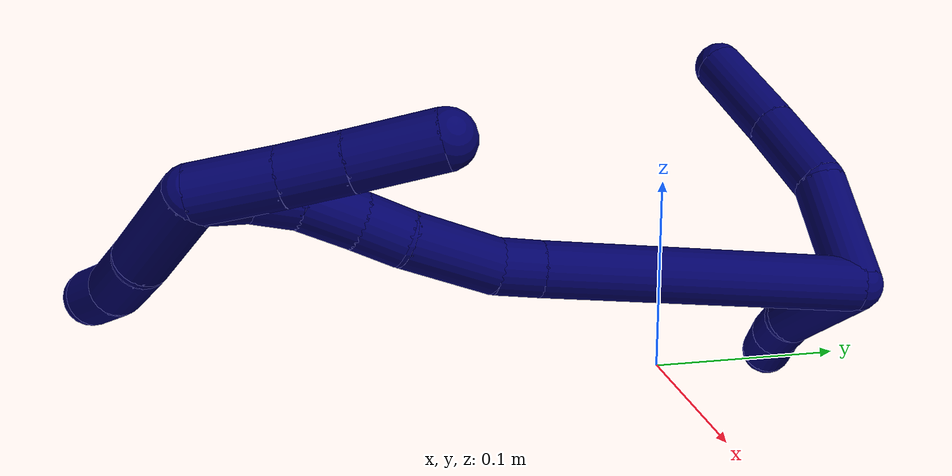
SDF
<sdf version="1.7">
 <world name="default">
  <model name="photoneo_s_sensor">
   <static>1</static>
   <pose>0 0 2 1.57079 1.57079 3.14159</pose>
   <link name="link">
    <inertial><mass>0.1</mass></inertial>
    <sensor name="sensor" type="depth">
     <update_rate>30</update_rate>
     <camera>
      <horizontal_fov>1.22</horizontal_fov>
      <image><width>1920</width><height>1200</height><format>B8G8R8</format></image>
      <clip><near>0.1</near><far>4</far></clip>
      <depth_camera><output>points</output></depth_camera>
     </camera>
     <plugin name="camera_plugin" filename="libgazebo_ros_depth_camera.so">
      <baseline>0.2</baseline>
      <alwaysOn>1</alwaysOn>
      <updateRate>0.0</updateRate>
      <cameraName>camera_ir</cameraName>
      <imageTopicName>/camera/color/image_raw</imageTopicName>
      <cameraInfoTopicName>/camera/color/camera_info</cameraInfoTopicName>
      <depthImageTopicName>/camera/depth/image_raw</depthImageTopicName>
      <depthImageCameraInfoTopicName>/camera/depth/camera_info</depthImageCameraInfoTopicName>
      <pointCloudTopicName>/camera/depth/points</pointCloudTopicName>
      <frameName>fr_optical</frameName>
      <pointCloudCutoff>0.1</pointCloudCutoff>
      <pointCloudCutoffMax>2.0</pointCloudCutoffMax>
      <distortionK1>0</distortionK1>
      <distortionK2>0</distortionK2>
      <distortionK3>0</distortionK3>
      <distortionT1>0</distortionT1>
      <distortionT2>0</distortionT2>
      <CxPrime>0</CxPrime>
      <Cx>0</Cx>
      <Cy>0</Cy>
      <focalLength>0</focalLength>
      <hackBaseline>0</hackBaseline>
     </plugin>
    </sensor>
   </link>
  </model>
  <model name="bin">
   <static>1</static>
   <link name="bottom">
    <collision name="collision-bottom">
     <pose>0 0 -0.01 0 -0 0</pose>
     <geometry><box><size>0.8 0.6 0.02</size></box></geometry>
     <surface>
      <friction><ode><mu>100</mu><mu2>100</mu2></ode></friction>
      <contact><collide_bitmask>65535</collide_bitmask></contact>
     </surface>
    </collision>
   </link>
   <link name="west_wall">
    <collision name="collision-west_wall">
     <pose>-0.41 0 0.1 0 -0 0</pose>
     <geometry><box><size>0.02 0.6 0.2</size></box></geometry>
     <surface>
      <friction><ode><mu>100</mu><mu2>100</mu2></ode></friction>
      <contact><collide_bitmask>65535</collide_bitmask></contact>
     </surface>
    </collision>
   </link>
   <link name="east_wall">
    <collision name="collision-east_wall">
     <pose>0.41 0 0.1 0 -0 0</pose>
     <geometry><box><size>0.02 0.6 0.2</size></box></geometry>
     <surface>
      <friction><ode><mu>100</mu><mu2>100</mu2></ode></friction>
      <contact><collide_bitmask>65535</collide_bitmask></contact>
     </surface>
    </collision>
   </link>
   <link name="south_wall">
    <collision name="collision-south_wall">
     <pose>0 -0.31 0.1 0 -0 0</pose>
     <geometry><box><size>0.8 0.02 0.2</size></box></geometry>
     <surface>
      <friction><ode><mu>100</mu><mu2>100</mu2></ode></friction>
      <contact><collide_bitmask>65535</collide_bitmask></contact>
     </surface>
    </collision>
   </link>
   <link name="north_wall">
    <collision name="collision-north_wall">
     <pose>0 0.31 0.1 0 -0 0</pose>
     <geometry><box><size>0.8 0.02 0.2</size></box></geometry>
     <surface>
      <friction><ode><mu>100</mu><mu2>100</mu2></ode></friction>
      <contact><collide_bitmask>65535</collide_bitmask></contact>
     </surface>
    </collision>
   </link>
  </model>
  <model name="7">
   <static>0</static>
   <link name="7">
    <collision name="collision-cylinder-e_1_2_8">
     <pose>0.025096 0.008584 0.003865 -1.14771 1.21193 -0.842256</pose>
     <geometry><cylinder><radius>0.0125</radius><length>0.053607</length></cylinder></geometry>
     <surface>
      <friction><ode><mu>1.16</mu><mu2>1.16</mu2><slip1>0</slip1><slip2>0</slip2></ode></friction>
      <contact><ode><kp>1e+06</kp><kd>1</kd><max_vel>0</max_vel><min_depth>0.001</min_depth></ode></contact>
     </surface>
    </collision>
    <visual name="visual-cylinder-e_1_2_8">
     <pose>0.025096 0.008584 0.003865 -1.14771 1.21193 -0.842256</pose>
     <geometry><cylinder><radius>0.0125</radius><length>0.053607</length></cylinder></geometry>
     <material><ambient>0.003922 0 0.403922 1</ambient></material>
    </visual>
    <collision name="collision-cylinder-e_2_8_9">
     <pose>0.068983 0.021711 0.017839 -0.42237 1.03792 -0.243689</pose>
     <geometry><cylinder><radius>0.0125</radius><length>0.043631</length></cylinder></geometry>
     <surface>
      <friction><ode><mu>1.16</mu><mu2>1.16</mu2><slip1>0</slip1><slip2>0</slip2></ode></friction>
      <contact><ode><kp>1e+06</kp><kd>1</kd><max_vel>0</max_vel><min_depth>0.001</min_depth></ode></contact>
     </surface>
    </collision>
    <visual name="visual-cylinder-e_2_8_9">
     <pose>0.068983 0.021711 0.017839 -0.42237 1.03792 -0.243689</pose>
     <geometry><cylinder><radius>0.0125</radius><length>0.043631</length></cylinder></geometry>
     <material><ambient>0.003922 0 0.403922 1</ambient></material>
    </visual>
    <collision name="collision-cylinder-e_3_9_6">
     <pose>0.11053 0.030938 0.040444 -0.358614 1.04037 -0.206906</pose>
     <geometry><cylinder><radius>0.0125</radius><length>0.052761</length></cylinder></geometry>
     <surface>
      <friction><ode><mu>1.16</mu><mu2>1.16</mu2><slip1>0</slip1><slip2>0</slip2></ode></friction>
      <contact><ode><kp>1e+06</kp><kd>1</kd><max_vel>0</max_vel><min_depth>0.001</min_depth></ode></contact>
     </surface>
    </collision>
    <visual name="visual-cylinder-e_3_9_6">
     <pose>0.11053 0.030938 0.040444 -0.358614 1.04037 -0.206906</pose>
     <geometry><cylinder><radius>0.0125</radius><length>0.052761</length></cylinder></geometry>
     <material><ambient>0.003922 0 0.403922 1</ambient></material>
    </visual>
    <collision name="collision-cylinder-e_1_2_10">
     <pose>-2e-05 0.000103 0.026641 -0.00388 -0.000734 1e-06</pose>
     <geometry><cylinder><radius>0.0125</radius><length>0.053282</length></cylinder></geometry>
     <surface>
      <friction><ode><mu>1.16</mu><mu2>1.16</mu2><slip1>0</slip1><slip2>0</slip2></ode></friction>
      <contact><ode><kp>1e+06</kp><kd>1</kd><max_vel>0</max_vel><min_depth>0.001</min_depth></ode></contact>
     </surface>
    </collision>
    <visual name="visual-cylinder-e_1_2_10">
     <pose>-2e-05 0.000103 0.026641 -0.00388 -0.000734 1e-06</pose>
     <geometry><cylinder><radius>0.0125</radius><length>0.053282</length></cylinder></geometry>
     <material><ambient>0.003922 0 0.403922 1</ambient></material>
    </visual>
    <collision name="collision-cylinder-e_2_10_11">
     <pose>-0.001531 0.003356 0.064306 -0.278287 -0.129371 0.018143</pose>
     <geometry><cylinder><radius>0.0125</radius><length>0.023123</length></cylinder></geometry>
     <surface>
      <friction><ode><mu>1.16</mu><mu2>1.16</mu2><slip1>0</slip1><slip2>0</slip2></ode></friction>
      <contact><ode><kp>1e+06</kp><kd>1</kd><max_vel>0</max_vel><min_depth>0.001</min_depth></ode></contact>
     </surface>
    </collision>
    <visual name="visual-cylinder-e_2_10_11">
     <pose>-0.001531 0.003356 0.064306 -0.278287 -0.129371 0.018143</pose>
     <geometry><cylinder><radius>0.0125</radius><length>0.023123</length></cylinder></geometry>
     <material><ambient>0.003922 0 0.403922 1</ambient></material>
    </visual>
    <collision name="collision-cylinder-e_3_11_5">
     <pose>-0.005777 0.009484 0.086407 -0.262664 -0.235658 0.031271</pose>
     <geometry><cylinder><radius>0.0125</radius><length>0.023595</length></cylinder></geometry>
     <surface>
      <friction><ode><mu>1.16</mu><mu2>1.16</mu2><slip1>0</slip1><slip2>0</slip2></ode></friction>
      <contact><ode><kp>1e+06</kp><kd>1</kd><max_vel>0</max_vel><min_depth>0.001</min_depth></ode></contact>
     </surface>
    </collision>
    <visual name="visual-cylinder-e_3_11_5">
     <pose>-0.005777 0.009484 0.086407 -0.262664 -0.235658 0.031271</pose>
     <geometry><cylinder><radius>0.0125</radius><length>0.023595</length></cylinder></geometry>
     <material><ambient>0.003922 0 0.403922 1</ambient></material>
    </visual>
    <collision name="collision-cylinder-e_1_2_12">
     <pose>0.031589 -0.065215 0.012461 1.382 0.444075 0.369163</pose>
     <geometry><cylinder><radius>0.0125</radius><length>0.147053</length></cylinder></geometry>
     <surface>
      <friction><ode><mu>1.16</mu><mu2>1.16</mu2><slip1>0</slip1><slip2>0</slip2></ode></friction>
      <contact><ode><kp>1e+06</kp><kd>1</kd><max_vel>0</max_vel><min_depth>0.001</min_depth></ode></contact>
     </surface>
    </collision>
    <visual name="visual-cylinder-e_1_2_12">
     <pose>0.031589 -0.065215 0.012461 1.382 0.444075 0.369163</pose>
     <geometry><cylinder><radius>0.0125</radius><length>0.147053</length></cylinder></geometry>
     <material><ambient>0.003922 0 0.403922 1</ambient></material>
    </visual>
    <collision name="collision-cylinder-e_2_12_13">
     <pose>0.067447 -0.139582 0.025754 1.48013 0.434986 0.398269</pose>
     <geometry><cylinder><radius>0.0125</radius><length>0.020265</length></cylinder></geometry>
     <surface>
      <friction><ode><mu>1.16</mu><mu2>1.16</mu2><slip1>0</slip1><slip2>0</slip2></ode></friction>
      <contact><ode><kp>1e+06</kp><kd>1</kd><max_vel>0</max_vel><min_depth>0.001</min_depth></ode></contact>
     </surface>
    </collision>
    <visual name="visual-cylinder-e_2_12_13">
     <pose>0.067447 -0.139582 0.025754 1.48013 0.434986 0.398269</pose>
     <geometry><cylinder><radius>0.0125</radius><length>0.020265</length></cylinder></geometry>
     <material><ambient>0.003922 0 0.403922 1</ambient></material>
    </visual>
    <collision name="collision-cylinder-e_3_13_14">
     <pose>0.083013 -0.166761 0.022858 1.77473 0.550344 0.667459</pose>
     <geometry><cylinder><radius>0.0125</radius><length>0.043197</length></cylinder></geometry>
     <surface>
      <friction><ode><mu>1.16</mu><mu2>1.16</mu2><slip1>0</slip1><slip2>0</slip2></ode></friction>
      <contact><ode><kp>1e+06</kp><kd>1</kd><max_vel>0</max_vel><min_depth>0.001</min_depth></ode></contact>
     </surface>
    </collision>
    <visual name="visual-cylinder-e_3_13_14">
     <pose>0.083013 -0.166761 0.022858 1.77473 0.550344 0.667459</pose>
     <geometry><cylinder><radius>0.0125</radius><length>0.043197</length></cylinder></geometry>
     <material><ambient>0.003922 0 0.403922 1</ambient></material>
    </visual>
    <collision name="collision-cylinder-e_4_14_15">
     <pose>0.100919 -0.192742 0.018424 1.65931 0.691583 0.750047</pose>
     <geometry><cylinder><radius>0.0125</radius><length>0.020732</length></cylinder></geometry>
     <surface>
      <friction><ode><mu>1.16</mu><mu2>1.16</mu2><slip1>0</slip1><slip2>0</slip2></ode></friction>
      <contact><ode><kp>1e+06</kp><kd>1</kd><max_vel>0</max_vel><min_depth>0.001</min_depth></ode></contact>
     </surface>
    </collision>
    <visual name="visual-cylinder-e_4_14_15">
     <pose>0.100919 -0.192742 0.018424 1.65931 0.691583 0.750047</pose>
     <geometry><cylinder><radius>0.0125</radius><length>0.020732</length></cylinder></geometry>
     <material><ambient>0.003922 0 0.403922 1</ambient></material>
    </visual>
    <collision name="collision-cylinder-e_5_15_16">
     <pose>0.114794 -0.210748 0.015774 1.76184 0.617024 0.737156</pose>
     <geometry><cylinder><radius>0.0125</radius><length>0.025108</length></cylinder></geometry>
     <surface>
      <friction><ode><mu>1.16</mu><mu2>1.16</mu2><slip1>0</slip1><slip2>0</slip2></ode></friction>
      <contact><ode><kp>1e+06</kp><kd>1</kd><max_vel>0</max_vel><min_depth>0.001</min_depth></ode></contact>
     </surface>
    </collision>
    <visual name="visual-cylinder-e_5_15_16">
     <pose>0.114794 -0.210748 0.015774 1.76184 0.617024 0.737156</pose>
     <geometry><cylinder><radius>0.0125</radius><length>0.025108</length></cylinder></geometry>
     <material><ambient>0.003922 0 0.403922 1</ambient></material>
    </visual>
    <collision name="collision-cylinder-e_6_16_17">
     <pose>0.126847 -0.22986 0.014077 1.54353 0.486084 0.473498</pose>
     <geometry><cylinder><radius>0.0125</radius><length>0.0205</length></cylinder></geometry>
     <surface>
      <friction><ode><mu>1.16</mu><mu2>1.16</mu2><slip1>0</slip1><slip2>0</slip2></ode></friction>
      <contact><ode><kp>1e+06</kp><kd>1</kd><max_vel>0</max_vel><min_depth>0.001</min_depth></ode></contact>
     </surface>
    </collision>
    <visual name="visual-cylinder-e_6_16_17">
     <pose>0.126847 -0.22986 0.014077 1.54353 0.486084 0.473498</pose>
     <geometry><cylinder><radius>0.0125</radius><length>0.0205</length></cylinder></geometry>
     <material><ambient>0.003922 0 0.403922 1</ambient></material>
    </visual>
    <collision name="collision-cylinder-e_7_17_1">
     <pose>0.134021 -0.25013 0.012731 1.71192 0.207672 0.23898</pose>
     <geometry><cylinder><radius>0.0125</radius><length>0.023145</length></cylinder></geometry>
     <surface>
      <friction><ode><mu>1.16</mu><mu2>1.16</mu2><slip1>0</slip1><slip2>0</slip2></ode></friction>
      <contact><ode><kp>1e+06</kp><kd>1</kd><max_vel>0</max_vel><min_depth>0.001</min_depth></ode></contact>
     </surface>
    </collision>
    <visual name="visual-cylinder-e_7_17_1">
     <pose>0.134021 -0.25013 0.012731 1.71192 0.207672 0.23898</pose>
     <geometry><cylinder><radius>0.0125</radius><length>0.023145</length></cylinder></geometry>
     <material><ambient>0.003922 0 0.403922 1</ambient></material>
    </visual>
    <collision name="collision-cylinder-e_1_1_18">
     <pose>0.133608 -0.26987 0.032913 0.373312 -0.11913 -0.022524</pose>
     <geometry><cylinder><radius>0.0125</radius><length>0.047105</length></cylinder></geometry>
     <surface>
      <friction><ode><mu>1.16</mu><mu2>1.16</mu2><slip1>0</slip1><slip2>0</slip2></ode></friction>
      <contact><ode><kp>1e+06</kp><kd>1</kd><max_vel>0</max_vel><min_depth>0.001</min_depth></ode></contact>
     </surface>
    </collision>
    <visual name="visual-cylinder-e_1_1_18">
     <pose>0.133608 -0.26987 0.032913 0.373312 -0.11913 -0.022524</pose>
     <geometry><cylinder><radius>0.0125</radius><length>0.047105</length></cylinder></geometry>
     <material><ambient>0.003922 0 0.403922 1</ambient></material>
    </visual>
    <collision name="collision-cylinder-e_2_18_19">
     <pose>0.131411 -0.28161 0.070801 0.196683 0.036661 0.003617</pose>
     <geometry><cylinder><radius>0.0125</radius><length>0.032882</length></cylinder></geometry>
     <surface>
      <friction><ode><mu>1.16</mu><mu2>1.16</mu2><slip1>0</slip1><slip2>0</slip2></ode></friction>
      <contact><ode><kp>1e+06</kp><kd>1</kd><max_vel>0</max_vel><min_depth>0.001</min_depth></ode></contact>
     </surface>
    </collision>
    <visual name="visual-cylinder-e_2_18_19">
     <pose>0.131411 -0.28161 0.070801 0.196683 0.036661 0.003617</pose>
     <geometry><cylinder><radius>0.0125</radius><length>0.032882</length></cylinder></geometry>
     <material><ambient>0.003922 0 0.403922 1</ambient></material>
    </visual>
    <collision name="collision-cylinder-e_3_19_4">
     <pose>0.134216 -0.288409 0.095992 0.376466 0.221867 0.042431</pose>
     <geometry><cylinder><radius>0.0125</radius><length>0.020013</length></cylinder></geometry>
     <surface>
      <friction><ode><mu>1.16</mu><mu2>1.16</mu2><slip1>0</slip1><slip2>0</slip2></ode></friction>
      <contact><ode><kp>1e+06</kp><kd>1</kd><max_vel>0</max_vel><min_depth>0.001</min_depth></ode></contact>
     </surface>
    </collision>
    <visual name="visual-cylinder-e_3_19_4">
     <pose>0.134216 -0.288409 0.095992 0.376466 0.221867 0.042431</pose>
     <geometry><cylinder><radius>0.0125</radius><length>0.020013</length></cylinder></geometry>
     <material><ambient>0.003922 0 0.403922 1</ambient></material>
    </visual>
    <collision name="collision-cylinder-e_1_1_20">
     <pose>0.131613 -0.246463 0.002243 -2.10962 -0.269825 0.469752</pose>
     <geometry><cylinder><radius>0.0125</radius><length>0.03597</length></cylinder></geometry>
     <surface>
      <friction><ode><mu>1.16</mu><mu2>1.16</mu2><slip1>0</slip1><slip2>0</slip2></ode></friction>
      <contact><ode><kp>1e+06</kp><kd>1</kd><max_vel>0</max_vel><min_depth>0.001</min_depth></ode></contact>
     </surface>
    </collision>
    <visual name="visual-cylinder-e_1_1_20">
     <pose>0.131613 -0.246463 0.002243 -2.10962 -0.269825 0.469752</pose>
     <geometry><cylinder><radius>0.0125</radius><length>0.03597</length></cylinder></geometry>
     <material><ambient>0.003922 0 0.403922 1</ambient></material>
    </visual>
    <collision name="collision-cylinder-e_2_20_21">
     <pose>0.123484 -0.220621 -0.01353 -2.13115 -0.252131 0.4505</pose>
     <geometry><cylinder><radius>0.0125</radius><length>0.02673</length></cylinder></geometry>
     <surface>
      <friction><ode><mu>1.16</mu><mu2>1.16</mu2><slip1>0</slip1><slip2>0</slip2></ode></friction>
      <contact><ode><kp>1e+06</kp><kd>1</kd><max_vel>0</max_vel><min_depth>0.001</min_depth></ode></contact>
     </surface>
    </collision>
    <visual name="visual-cylinder-e_2_20_21">
     <pose>0.123484 -0.220621 -0.01353 -2.13115 -0.252131 0.4505</pose>
     <geometry><cylinder><radius>0.0125</radius><length>0.02673</length></cylinder></geometry>
     <material><ambient>0.003922 0 0.403922 1</ambient></material>
    </visual>
    <collision name="collision-cylinder-e_3_21_3">
     <pose>0.115709 -0.194323 -0.030048 -2.13193 -0.240474 0.430508</pose>
     <geometry><cylinder><radius>0.0125</radius><length>0.037299</length></cylinder></geometry>
     <surface>
      <friction><ode><mu>1.16</mu><mu2>1.16</mu2><slip1>0</slip1><slip2>0</slip2></ode></friction>
      <contact><ode><kp>1e+06</kp><kd>1</kd><max_vel>0</max_vel><min_depth>0.001</min_depth></ode></contact>
     </surface>
    </collision>
    <visual name="visual-cylinder-e_3_21_3">
     <pose>0.115709 -0.194323 -0.030048 -2.13193 -0.240474 0.430508</pose>
     <geometry><cylinder><radius>0.0125</radius><length>0.037299</length></cylinder></geometry>
     <material><ambient>0.003922 0 0.403922 1</ambient></material>
    </visual>
    <collision name="collision-sphere-3">
     <pose>0.111267 -0.178987 -0.039686 0 -0 0</pose>
     <geometry><sphere><radius>0.0125</radius></sphere></geometry>
     <surface>
      <friction><ode><mu>1.16</mu><mu2>1.16</mu2><slip1>0</slip1><slip2>0</slip2></ode></friction>
      <contact><ode><kp>1e+06</kp><kd>1</kd><max_vel>0</max_vel><min_depth>0.001</min_depth></ode></contact>
     </surface>
    </collision>
    <visual name="visual-sphere-3">
     <pose>0.111267 -0.178987 -0.039686 0 -0 0</pose>
     <geometry><sphere><radius>0.0125</radius></sphere></geometry>
     <material><ambient>0.003922 0 0.403922 1</ambient></material>
    </visual>
    <collision name="collision-sphere-21">
     <pose>0.12015 -0.209658 -0.020409 0 -0 0</pose>
     <geometry><sphere><radius>0.0125</radius></sphere></geometry>
     <surface>
      <friction><ode><mu>1.16</mu><mu2>1.16</mu2><slip1>0</slip1><slip2>0</slip2></ode></friction>
      <contact><ode><kp>1e+06</kp><kd>1</kd><max_vel>0</max_vel><min_depth>0.001</min_depth></ode></contact>
     </surface>
    </collision>
    <visual name="visual-sphere-21">
     <pose>0.12015 -0.209658 -0.020409 0 -0 0</pose>
     <geometry><sphere><radius>0.0125</radius></sphere></geometry>
     <material><ambient>0.003922 0 0.403922 1</ambient></material>
    </visual>
    <collision name="collision-sphere-20">
     <pose>0.126819 -0.231585 -0.006651 0 -0 0</pose>
     <geometry><sphere><radius>0.0125</radius></sphere></geometry>
     <surface>
      <friction><ode><mu>1.16</mu><mu2>1.16</mu2><slip1>0</slip1><slip2>0</slip2></ode></friction>
      <contact><ode><kp>1e+06</kp><kd>1</kd><max_vel>0</max_vel><min_depth>0.001</min_depth></ode></contact>
     </surface>
    </collision>
    <visual name="visual-sphere-20">
     <pose>0.126819 -0.231585 -0.006651 0 -0 0</pose>
     <geometry><sphere><radius>0.0125</radius></sphere></geometry>
     <material><ambient>0.003922 0 0.403922 1</ambient></material>
    </visual>
    <collision name="collision-sphere-4">
     <pose>0.136418 -0.291998 0.10507 0 -0 0</pose>
     <geometry><sphere><radius>0.0125</radius></sphere></geometry>
     <surface>
      <friction><ode><mu>1.16</mu><mu2>1.16</mu2><slip1>0</slip1><slip2>0</slip2></ode></friction>
      <contact><ode><kp>1e+06</kp><kd>1</kd><max_vel>0</max_vel><min_depth>0.001</min_depth></ode></contact>
     </surface>
    </collision>
    <visual name="visual-sphere-4">
     <pose>0.136418 -0.291998 0.10507 0 -0 0</pose>
     <geometry><sphere><radius>0.0125</radius></sphere></geometry>
     <material><ambient>0.003922 0 0.403922 1</ambient></material>
    </visual>
    <collision name="collision-sphere-11">
     <pose>-0.003022 0.006506 0.075329 0 -0 0</pose>
     <geometry><sphere><radius>0.0125</radius></sphere></geometry>
     <surface>
      <friction><ode><mu>1.16</mu><mu2>1.16</mu2><slip1>0</slip1><slip2>0</slip2></ode></friction>
      <contact><ode><kp>1e+06</kp><kd>1</kd><max_vel>0</max_vel><min_depth>0.001</min_depth></ode></contact>
     </surface>
    </collision>
    <visual name="visual-sphere-11">
     <pose>-0.003022 0.006506 0.075329 0 -0 0</pose>
     <geometry><sphere><radius>0.0125</radius></sphere></geometry>
     <material><ambient>0.003922 0 0.403922 1</ambient></material>
    </visual>
    <collision name="collision-sphere-10">
     <pose>-3.9e-05 0.000207 0.053282 0 -0 0</pose>
     <geometry><sphere><radius>0.0125</radius></sphere></geometry>
     <surface>
      <friction><ode><mu>1.16</mu><mu2>1.16</mu2><slip1>0</slip1><slip2>0</slip2></ode></friction>
      <contact><ode><kp>1e+06</kp><kd>1</kd><max_vel>0</max_vel><min_depth>0.001</min_depth></ode></contact>
     </surface>
    </collision>
    <visual name="visual-sphere-10">
     <pose>-3.9e-05 0.000207 0.053282 0 -0 0</pose>
     <geometry><sphere><radius>0.0125</radius></sphere></geometry>
     <material><ambient>0.003922 0 0.403922 1</ambient></material>
    </visual>
    <collision name="collision-sphere-6">
     <pose>0.133286 0.035622 0.052941 0 -0 0</pose>
     <geometry><sphere><radius>0.0125</radius></sphere></geometry>
     <surface>
      <friction><ode><mu>1.16</mu><mu2>1.16</mu2><slip1>0</slip1><slip2>0</slip2></ode></friction>
      <contact><ode><kp>1e+06</kp><kd>1</kd><max_vel>0</max_vel><min_depth>0.001</min_depth></ode></contact>
     </surface>
    </collision>
    <visual name="visual-sphere-6">
     <pose>0.133286 0.035622 0.052941 0 -0 0</pose>
     <geometry><sphere><radius>0.0125</radius></sphere></geometry>
     <material><ambient>0.003922 0 0.403922 1</ambient></material>
    </visual>
    <collision name="collision-sphere-9">
     <pose>0.087774 0.026254 0.027947 0 -0 0</pose>
     <geometry><sphere><radius>0.0125</radius></sphere></geometry>
     <surface>
      <friction><ode><mu>1.16</mu><mu2>1.16</mu2><slip1>0</slip1><slip2>0</slip2></ode></friction>
      <contact><ode><kp>1e+06</kp><kd>1</kd><max_vel>0</max_vel><min_depth>0.001</min_depth></ode></contact>
     </surface>
    </collision>
    <visual name="visual-sphere-9">
     <pose>0.087774 0.026254 0.027947 0 -0 0</pose>
     <geometry><sphere><radius>0.0125</radius></sphere></geometry>
     <material><ambient>0.003922 0 0.403922 1</ambient></material>
    </visual>
    <collision name="collision-sphere-2">
     <geometry><sphere><radius>0.0125</radius></sphere></geometry>
     <surface>
      <friction><ode><mu>1.16</mu><mu2>1.16</mu2><slip1>0</slip1><slip2>0</slip2></ode></friction>
      <contact><ode><kp>1e+06</kp><kd>1</kd><max_vel>0</max_vel><min_depth>0.001</min_depth></ode></contact>
     </surface>
    </collision>
    <visual name="visual-sphere-2">
     <geometry><sphere><radius>0.0125</radius></sphere></geometry>
     <material><ambient>0.003922 0 0.403922 1</ambient></material>
    </visual>
    <collision name="collision-sphere-19">
     <pose>0.132014 -0.28482 0.086914 0 -0 0</pose>
     <geometry><sphere><radius>0.0125</radius></sphere></geometry>
     <surface>
      <friction><ode><mu>1.16</mu><mu2>1.16</mu2><slip1>0</slip1><slip2>0</slip2></ode></friction>
      <contact><ode><kp>1e+06</kp><kd>1</kd><max_vel>0</max_vel><min_depth>0.001</min_depth></ode></contact>
     </surface>
    </collision>
    <visual name="visual-sphere-19">
     <pose>0.132014 -0.28482 0.086914 0 -0 0</pose>
     <geometry><sphere><radius>0.0125</radius></sphere></geometry>
     <material><ambient>0.003922 0 0.403922 1</ambient></material>
    </visual>
    <collision name="collision-sphere-8">
     <pose>0.050192 0.017167 0.00773 0 -0 0</pose>
     <geometry><sphere><radius>0.0125</radius></sphere></geometry>
     <surface>
      <friction><ode><mu>1.16</mu><mu2>1.16</mu2><slip1>0</slip1><slip2>0</slip2></ode></friction>
      <contact><ode><kp>1e+06</kp><kd>1</kd><max_vel>0</max_vel><min_depth>0.001</min_depth></ode></contact>
     </surface>
    </collision>
    <visual name="visual-sphere-8">
     <pose>0.050192 0.017167 0.00773 0 -0 0</pose>
     <geometry><sphere><radius>0.0125</radius></sphere></geometry>
     <material><ambient>0.003922 0 0.403922 1</ambient></material>
    </visual>
    <collision name="collision-sphere-5">
     <pose>-0.008531 0.012463 0.097485 0 -0 0</pose>
     <geometry><sphere><radius>0.0125</radius></sphere></geometry>
     <surface>
      <friction><ode><mu>1.16</mu><mu2>1.16</mu2><slip1>0</slip1><slip2>0</slip2></ode></friction>
      <contact><ode><kp>1e+06</kp><kd>1</kd><max_vel>0</max_vel><min_depth>0.001</min_depth></ode></contact>
     </surface>
    </collision>
    <visual name="visual-sphere-5">
     <pose>-0.008531 0.012463 0.097485 0 -0 0</pose>
     <geometry><sphere><radius>0.0125</radius></sphere></geometry>
     <material><ambient>0.003922 0 0.403922 1</ambient></material>
    </visual>
    <collision name="collision-sphere-12">
     <pose>0.063177 -0.130431 0.024922 0 -0 0</pose>
     <geometry><sphere><radius>0.0125</radius></sphere></geometry>
     <surface>
      <friction><ode><mu>1.16</mu><mu2>1.16</mu2><slip1>0</slip1><slip2>0</slip2></ode></friction>
      <contact><ode><kp>1e+06</kp><kd>1</kd><max_vel>0</max_vel><min_depth>0.001</min_depth></ode></contact>
     </surface>
    </collision>
    <visual name="visual-sphere-12">
     <pose>0.063177 -0.130431 0.024922 0 -0 0</pose>
     <geometry><sphere><radius>0.0125</radius></sphere></geometry>
     <material><ambient>0.003922 0 0.403922 1</ambient></material>
    </visual>
    <collision name="collision-sphere-13">
     <pose>0.071717 -0.148733 0.026586 0 -0 0</pose>
     <geometry><sphere><radius>0.0125</radius></sphere></geometry>
     <surface>
      <friction><ode><mu>1.16</mu><mu2>1.16</mu2><slip1>0</slip1><slip2>0</slip2></ode></friction>
      <contact><ode><kp>1e+06</kp><kd>1</kd><max_vel>0</max_vel><min_depth>0.001</min_depth></ode></contact>
     </surface>
    </collision>
    <visual name="visual-sphere-13">
     <pose>0.071717 -0.148733 0.026586 0 -0 0</pose>
     <geometry><sphere><radius>0.0125</radius></sphere></geometry>
     <material><ambient>0.003922 0 0.403922 1</ambient></material>
    </visual>
    <collision name="collision-sphere-14">
     <pose>0.094308 -0.184789 0.01913 0 -0 0</pose>
     <geometry><sphere><radius>0.0125</radius></sphere></geometry>
     <surface>
      <friction><ode><mu>1.16</mu><mu2>1.16</mu2><slip1>0</slip1><slip2>0</slip2></ode></friction>
      <contact><ode><kp>1e+06</kp><kd>1</kd><max_vel>0</max_vel><min_depth>0.001</min_depth></ode></contact>
     </surface>
    </collision>
    <visual name="visual-sphere-14">
     <pose>0.094308 -0.184789 0.01913 0 -0 0</pose>
     <geometry><sphere><radius>0.0125</radius></sphere></geometry>
     <material><ambient>0.003922 0 0.403922 1</ambient></material>
    </visual>
    <collision name="collision-sphere-15">
     <pose>0.10753 -0.200695 0.017718 0 -0 0</pose>
     <geometry><sphere><radius>0.0125</radius></sphere></geometry>
     <surface>
      <friction><ode><mu>1.16</mu><mu2>1.16</mu2><slip1>0</slip1><slip2>0</slip2></ode></friction>
      <contact><ode><kp>1e+06</kp><kd>1</kd><max_vel>0</max_vel><min_depth>0.001</min_depth></ode></contact>
     </surface>
    </collision>
    <visual name="visual-sphere-15">
     <pose>0.10753 -0.200695 0.017718 0 -0 0</pose>
     <geometry><sphere><radius>0.0125</radius></sphere></geometry>
     <material><ambient>0.003922 0 0.403922 1</ambient></material>
    </visual>
    <collision name="collision-sphere-16">
     <pose>0.122058 -0.220801 0.01383 0 -0 0</pose>
     <geometry><sphere><radius>0.0125</radius></sphere></geometry>
     <surface>
      <friction><ode><mu>1.16</mu><mu2>1.16</mu2><slip1>0</slip1><slip2>0</slip2></ode></friction>
      <contact><ode><kp>1e+06</kp><kd>1</kd><max_vel>0</max_vel><min_depth>0.001</min_depth></ode></contact>
     </surface>
    </collision>
    <visual name="visual-sphere-16">
     <pose>0.122058 -0.220801 0.01383 0 -0 0</pose>
     <geometry><sphere><radius>0.0125</radius></sphere></geometry>
     <material><ambient>0.003922 0 0.403922 1</ambient></material>
    </visual>
    <collision name="collision-sphere-17">
     <pose>0.131635 -0.238919 0.014324 0 -0 0</pose>
     <geometry><sphere><radius>0.0125</radius></sphere></geometry>
     <surface>
      <friction><ode><mu>1.16</mu><mu2>1.16</mu2><slip1>0</slip1><slip2>0</slip2></ode></friction>
      <contact><ode><kp>1e+06</kp><kd>1</kd><max_vel>0</max_vel><min_depth>0.001</min_depth></ode></contact>
     </surface>
    </collision>
    <visual name="visual-sphere-17">
     <pose>0.131635 -0.238919 0.014324 0 -0 0</pose>
     <geometry><sphere><radius>0.0125</radius></sphere></geometry>
     <material><ambient>0.003922 0 0.403922 1</ambient></material>
    </visual>
    <collision name="collision-sphere-1">
     <pose>0.136407 -0.261341 0.011138 0 -0 0</pose>
     <geometry><sphere><radius>0.0125</radius></sphere></geometry>
     <surface>
      <friction><ode><mu>1.16</mu><mu2>1.16</mu2><slip1>0</slip1><slip2>0</slip2></ode></friction>
      <contact><ode><kp>1e+06</kp><kd>1</kd><max_vel>0</max_vel><min_depth>0.001</min_depth></ode></contact>
     </surface>
    </collision>
    <visual name="visual-sphere-1">
     <pose>0.136407 -0.261341 0.011138 0 -0 0</pose>
     <geometry><sphere><radius>0.0125</radius></sphere></geometry>
     <material><ambient>0.003922 0 0.403922 1</ambient></material>
    </visual>
    <collision name="collision-sphere-18">
     <pose>0.130809 -0.278399 0.054688 0 -0 0</pose>
     <geometry><sphere><radius>0.0125</radius></sphere></geometry>
     <surface>
      <friction><ode><mu>1.16</mu><mu2>1.16</mu2><slip1>0</slip1><slip2>0</slip2></ode></friction>
      <contact><ode><kp>1e+06</kp><kd>1</kd><max_vel>0</max_vel><min_depth>0.001</min_depth></ode></contact>
     </surface>
    </collision>
    <visual name="visual-sphere-18">
     <pose>0.130809 -0.278399 0.054688 0 -0 0</pose>
     <geometry><sphere><radius>0.0125</radius></sphere></geometry>
     <material><ambient>0.003922 0 0.403922 1</ambient></material>
    </visual>
    <inertial>
     <pose>0.074587 -0.114426 0.022887 0 -0 0</pose>
     <mass>0.75</mass>
     <inertia>
      <ixx>0.000416</ixx>
      <ixy>0</ixy>
      <ixz>0</ixz>
      <iyy>0.000239</iyy>
      <iyz>0</iyz>
      <izz>0.000101</izz>
     </inertia>
    </inertial>
   </link>
   <pose>0.096823 0.059847 0.071027 2.84794 -0.943868 -2.52987</pose>
  </model>
 </world>
</sdf>
